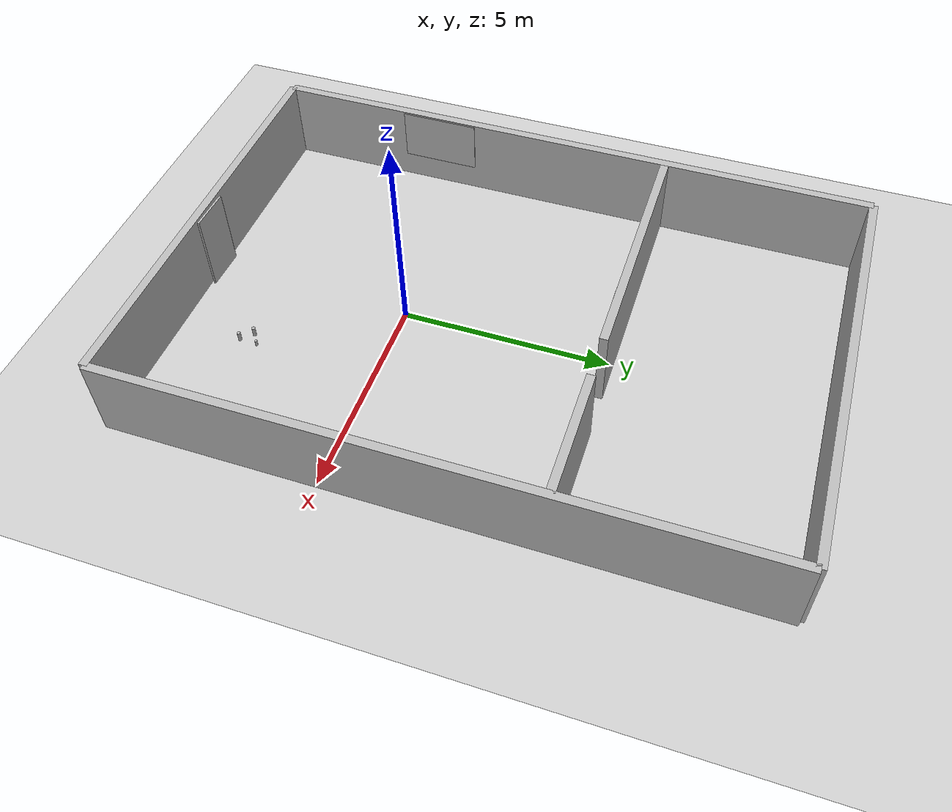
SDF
<sdf version="1.4">
 <world name="default">
  <physics type="ode">
   <gravity>0 0 -9.81</gravity>
   <ode>
    <solver><type>quick</type><iters>20</iters><sor>1</sor></solver>
    <constraints>
     <cfm>0</cfm>
     <erp>0.2</erp>
     <contact_max_correcting_vel>100</contact_max_correcting_vel>
     <contact_surface_layer>0</contact_surface_layer>
    </constraints>
   </ode>
   <real_time_update_rate>1000</real_time_update_rate>
   <max_step_size>0.001</max_step_size>
   <real_time_factor>1</real_time_factor>
  </physics>
  <light name="sun" type="directional">
   <pose>0 0 10 0 -0 0</pose>
   <diffuse>0.8 0.8 0.8 1</diffuse>
   <specular>0.2 0.2 0.2 1</specular>
   <attenuation>
    <range>1000</range>
    <constant>0.9</constant>
    <linear>0.01</linear>
    <quadratic>0.001</quadratic>
   </attenuation>
   <direction>-0.5 0.1 -0.9</direction>
  </light>
  <model name="ground_plane">
   <static>1</static>
   <link name="link">
    <collision name="collision">
     <geometry><plane><normal>0 0 1</normal><size>100 100</size></plane></geometry>
     <surface><friction><ode><mu>100</mu><mu2>50</mu2></ode></friction></surface>
    </collision>
    <visual name="visual">
     <cast_shadows>0</cast_shadows>
     <geometry><plane><normal>0 0 1</normal><size>100 100</size></plane></geometry>
     <material>
      <script><uri>file://media/materials/scripts/gazebo.material</uri><name>Gazebo/Grey</name></script>
     </material>
    </visual>
    <velocity_decay><linear>0</linear><angular>0</angular></velocity_decay>
   </link>
  </model>
  <model name="wall_1_model">
   <pose>0 -5 1 0 -0 0</pose>
   <static>1</static>
   <link name="wall_1_body">
    <inertial>
     <mass>1</mass>
     <inertia><ixx>1</ixx><ixy>0</ixy><ixz>0</ixz><iyy>1</iyy><iyz>0</iyz><izz>1</izz></inertia>
    </inertial>
    <collision name="collision"><geometry><box><size>10 0.2 2</size></box></geometry></collision>
    <visual name="visual"><geometry><box><size>10 0.2 2</size></box></geometry></visual>
    <velocity_decay><linear>0</linear><angular>0</angular></velocity_decay>
   </link>
  </model>
  <model name="wall_2_model">
   <pose>0 10 1 0 -0 0</pose>
   <static>1</static>
   <link name="wall_2_body">
    <inertial>
     <mass>1</mass>
     <inertia><ixx>1</ixx><ixy>0</ixy><ixz>0</ixz><iyy>1</iyy><iyz>0</iyz><izz>1</izz></inertia>
    </inertial>
    <collision name="collision"><geometry><box><size>10 0.2 2</size></box></geometry></collision>
    <visual name="visual"><geometry><box><size>10 0.2 2</size></box></geometry></visual>
    <velocity_decay><linear>0</linear><angular>0</angular></velocity_decay>
   </link>
  </model>
  <model name="wall_3_model">
   <pose>-5 2.5 1 0 -0 0</pose>
   <static>1</static>
   <link name="wall_3_body">
    <inertial>
     <mass>1</mass>
     <inertia><ixx>1</ixx><ixy>0</ixy><ixz>0</ixz><iyy>1</iyy><iyz>0</iyz><izz>1</izz></inertia>
    </inertial>
    <collision name="collision"><geometry><box><size>0.2 15 2</size></box></geometry></collision>
    <visual name="visual"><geometry><box><size>0.2 15 2</size></box></geometry></visual>
    <velocity_decay><linear>0</linear><angular>0</angular></velocity_decay>
   </link>
  </model>
  <model name="wall_4_model">
   <pose>5 2.5 1 0 -0 0</pose>
   <static>1</static>
   <link name="wall_4_body">
    <inertial>
     <mass>1</mass>
     <inertia><ixx>1</ixx><ixy>0</ixy><ixz>0</ixz><iyy>1</iyy><iyz>0</iyz><izz>1</izz></inertia>
    </inertial>
    <collision name="collision"><geometry><box><size>0.2 15 2</size></box></geometry></collision>
    <visual name="visual"><geometry><box><size>0.2 15 2</size></box></geometry></visual>
    <velocity_decay><linear>0</linear><angular>0</angular></velocity_decay>
   </link>
  </model>
  <model name="wall_5_model">
   <pose>-2 5 1 0 -0 0</pose>
   <static>1</static>
   <link name="wall_5_body">
    <inertial>
     <mass>1</mass>
     <inertia><ixx>1</ixx><ixy>0</ixy><ixz>0</ixz><iyy>1</iyy><iyz>0</iyz><izz>1</izz></inertia>
    </inertial>
    <collision name="collision"><geometry><box><size>6 0.2 2</size></box></geometry></collision>
    <visual name="visual"><geometry><box><size>6 0.2 2</size></box></geometry></visual>
    <velocity_decay><linear>0</linear><angular>0</angular></velocity_decay>
   </link>
  </model>
  <model name="wall_6_model">
   <pose>3.5 5 1 0 -0 0</pose>
   <static>1</static>
   <link name="wall_6_body">
    <inertial>
     <mass>1</mass>
     <inertia><ixx>1</ixx><ixy>0</ixy><ixz>0</ixz><iyy>1</iyy><iyz>0</iyz><izz>1</izz></inertia>
    </inertial>
    <collision name="collision"><geometry><box><size>3 0.2 2</size></box></geometry></collision>
    <visual name="visual"><geometry><box><size>3 0.2 2</size></box></geometry></visual>
    <velocity_decay><linear>0</linear><angular>0</angular></velocity_decay>
   </link>
  </model>
  <model name="pringles">
   <static>0</static>
   <link name="link">
    <inertial>
     <mass>0.25</mass>
     <inertia><ixx>0</ixx><ixy>0</ixy><ixz>0</ixz><iyy>0</iyy><iyz>0</iyz><izz>0</izz></inertia>
    </inertial>
    <collision name="collision">
     <geometry><cylinder><radius>0.04</radius><length>0.235</length></cylinder></geometry>
    </collision>
    <visual name="visual">
     <geometry><cylinder><radius>0.04</radius><length>0.235</length></cylinder></geometry>
     <material>
      <script>
       <uri>model://pringles/material/scripts</uri>
       <uri>model://pringles/material/textures</uri>
       <name>Custom/pringles</name>
      </script>
     </material>
    </visual>
    <velocity_decay><linear>0</linear><angular>0</angular></velocity_decay>
   </link>
   <pose>2.40654 -3 0.777508 4.6e-05 -0.000186 0.000321</pose>
  </model>
  <model name="coke_can_slim">
   <static>0</static>
   <link name="link">
    <inertial>
     <mass>0.15</mass>
     <inertia><ixx>2079.98</ixx><ixy>0</ixy><ixz>0</ixz><iyy>2079.98</iyy><iyz>0</iyz><izz>419.21</izz></inertia>
    </inertial>
    <collision name="collision">
     <geometry><cylinder><radius>0.029</radius><length>0.15</length></cylinder></geometry>
    </collision>
    <visual name="visual">
     <geometry><cylinder><radius>0.029</radius><length>0.15</length></cylinder></geometry>
     <material>
      <script>
       <uri>model://coke_can_slim/material/scripts</uri>
       <uri>model://coke_can_slim/material/textures</uri>
       <name>Custom/coke_can_slim</name>
      </script>
     </material>
    </visual>
    <velocity_decay><linear>0</linear><angular>0</angular></velocity_decay>
   </link>
   <pose>2.43428 -2.57448 0.735007 8.6e-05 -0.000229 0</pose>
  </model>
  <model name="pringles2">
   <static>0</static>
   <link name="link">
    <inertial>
     <mass>0.25</mass>
     <inertia><ixx>0</ixx><ixy>0</ixy><ixz>0</ixz><iyy>0</iyy><iyz>0</iyz><izz>0</izz></inertia>
    </inertial>
    <collision name="collision">
     <pose>0 0 0.12 -3.14159 -0 0</pose>
     <geometry><cylinder><radius>0.04</radius><length>0.235</length></cylinder></geometry>
    </collision>
    <visual name="visual">
     <pose>0 0 0.12 -3.14159 -0 0</pose>
     <geometry><cylinder><radius>0.04</radius><length>0.235</length></cylinder></geometry>
     <material>
      <script>
       <uri>model://pringles2/material/scripts</uri>
       <uri>model://pringles2/material/textures</uri>
       <name>Custom/pringles2</name>
      </script>
     </material>
    </visual>
    <velocity_decay><linear>0</linear><angular>0</angular></velocity_decay>
   </link>
   <pose>2.17347 -2.75653 0.657508 3.6e-05 -0.000196 -4e-06</pose>
  </model>
  <model name="pal_poster">
   <link name="link">
    <gravity>0</gravity>
    <inertial>
     <mass>0.4</mass>
     <inertia><ixx>1</ixx><ixy>0</ixy><ixz>0</ixz><iyy>1</iyy><iyz>0</iyz><izz>1</izz></inertia>
    </inertial>
    <collision name="collision"><geometry><box><size>0.02 0.5 0.644</size></box></geometry></collision>
    <visual name="visual">
     <geometry><box><size>0.02 0.5 0.644</size></box></geometry>
     <material>
      <script>
       <uri>model://pal_poster/material/scripts</uri>
       <uri>model://pal_poster/material/textures</uri>
       <name>Custom/pal_poster</name>
      </script>
     </material>
    </visual>
    <velocity_decay><linear>0</linear><angular>0</angular></velocity_decay>
   </link>
   <pose>-0.78 4.83 1.2 0 0 -1.57</pose>
   <static>0</static>
  </model>
  <model name="aruco_board">
   <static>0</static>
   <link name="marker">
    <inertial>
     <mass>0.5</mass>
     <inertia><ixx>0</ixx><ixy>0</ixy><ixz>0</ixz><iyy>0</iyy><iyz>0</iyz><izz>0</izz></inertia>
    </inertial>
    <visual name="visual">
     <geometry><box><size>0.02 1.9 1.3</size></box></geometry>
     <material>
      <script>
       <uri>model://aruco_board/material/scripts</uri>
       <uri>model://aruco_board/material/textures</uri>
       <name>Aruco/aruco_board</name>
      </script>
     </material>
    </visual>
    <collision name="collision"><geometry><box><size>0.02 1.9 1.3</size></box></geometry></collision>
    <self_collide>1</self_collide>
    <gravity>0</gravity>
    <velocity_decay><linear>0</linear><angular>0</angular></velocity_decay>
   </link>
   <pose>-4.85 -0.86 1.35 0 -0 0</pose>
  </model>
  <model name="table">
   <link name="wallWithREEMphoto_body">
    <inertial>
     <mass>4</mass>
     <inertia><ixx>1</ixx><ixy>0</ixy><ixz>0</ixz><iyy>1</iyy><iyz>0</iyz><izz>1</izz></inertia>
    </inertial>
    <collision name="collision"><geometry><box><size>0.05 1 2</size></box></geometry></collision>
    <visual name="visual">
     <geometry><box><size>0.05 1 2</size></box></geometry>
     <material>
      <script>
       <uri>model://wall_with_reem_photo/material/scripts</uri>
       <uri>model://wall_with_reem_photo/material/textures</uri>
       <name>Custom/REEM_photo0</name>
      </script>
     </material>
    </visual>
    <velocity_decay><linear>0</linear><angular>0</angular></velocity_decay>
   </link>
   <pose>-0.025898 -4.80868 0.999999 2e-06 -1.3e-05 -1.60396</pose>
   <static>0</static>
  </model>
  <scene><ambient>0.4 0.4 0.4 1</ambient><background>0.7 0.7 0.7 1</background><shadows>1</shadows></scene>
  <spherical_coordinates>
   <surface_model>EARTH_WGS84</surface_model>
   <latitude_deg>0</latitude_deg>
   <longitude_deg>0</longitude_deg>
   <elevation>0</elevation>
   <heading_deg>0</heading_deg>
  </spherical_coordinates>
 </world>
</sdf>
